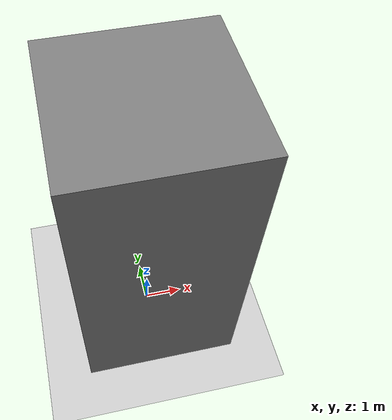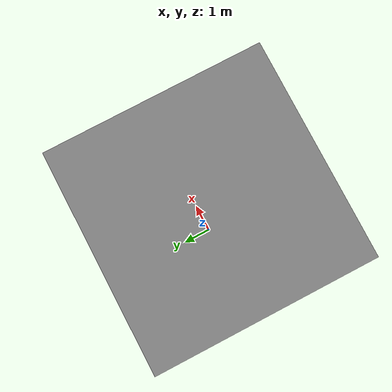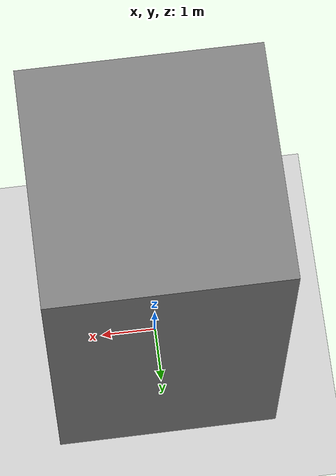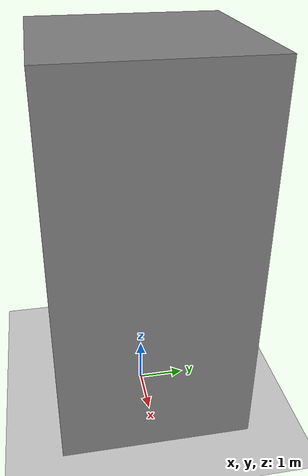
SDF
<sdf version="1.6">
  <world name="elevator_world">
    <include>
      <uri>model://sun</uri>
    </include>

    <include>
      <uri>model://ground_plane</uri>
    </include>

    <!-- Elevator Model -->
    <model name="elevator">
      <static>true</static>
      <pose>0 0 4 0 0 0</pose>
      <link name="body">
        <visual name="visual">
          <geometry>
            <box>
              <size>4 4 8</size>
            </box>
          </geometry>
          <material>
            <ambient>0.5 0.5 0.5 1</ambient>
            <diffuse>0.5 0.5 0.5 1</diffuse>
            <specular>0.1 0.1 0.1 1</specular>
          </material>
        </visual>
      </link>

      <!-- the buttons 1 to 5 -->
      <link name="button_1">
        <pose>0 1.9 1 0 0 0</pose> <!-- Adjust the x, y, and z for button placement -->
        <visual name="visual">
          <geometry>
            <box>
              <size>0.1 0.1 0.1</size>
            </box>
          </geometry>
          <material>
            <ambient>1 0 0 1</ambient> <!-- Red -->
            <diffuse>1 0 0 1</diffuse>
            <specular>0.1 0.1 0.1 1</specular>
          </material>
        </visual>
      </link>
      <link name="button_2">
        <pose>0 1.9 1.2 0 0 0</pose>
        <!-- Button visual -->
        <visual name="visual">
          <geometry>
            <box>
              <size>0.1 0.1 0.1</size>
            </box>
          </geometry>
          <material>
            <ambient>1 0 0 1</ambient> <!-- Red -->
            <diffuse>1 0 0 1</diffuse>
            <specular>0.1 0.1 0.1 1</specular>
          </material>
        </visual>
      </link>
      <link name="button_3">
        <pose>0 1.9 1.4 0 0 0</pose>
        <!-- Button visual -->
        <visual name="visual">
          <geometry>
            <box>
              <size>0.1 0.1 0.1</size>
            </box>
          </geometry>
          <material>
            <ambient>1 0 0 1</ambient> <!-- Red -->
            <diffuse>1 0 0 1</diffuse>
            <specular>0.1 0.1 0.1 1</specular>
          </material>
        </visual>
      </link>
      <link name="button_4">
        <pose>0 1.9 1.6 0 0 0</pose>
        <!-- Button visual -->
        <visual name="visual">
          <geometry>
            <box>
              <size>0.1 0.1 0.1</size>
            </box>
          </geometry>
          <material>
            <ambient>1 0 0 1</ambient> <!-- Red -->
            <diffuse>1 0 0 1</diffuse>
            <specular>0.1 0.1 0.1 1</specular>
          </material>
        </visual>
      </link>
      <link name="button_5">
        <pose>0 1.9 1.8 0 0 0</pose>
        <!-- Button visual -->
        <visual name="visual">
          <geometry>
            <box>
              <size>0.1 0.1 0.1</size>
            </box>
          </geometry>
          <material>
            <ambient>1 0 0 1</ambient> <!-- Red -->
            <diffuse>1 0 0 1</diffuse>
            <specular>0.1 0.1 0.1 1</specular>
          </material>
        </visual>
      </link>

    </model>
  </world>
</sdf>
